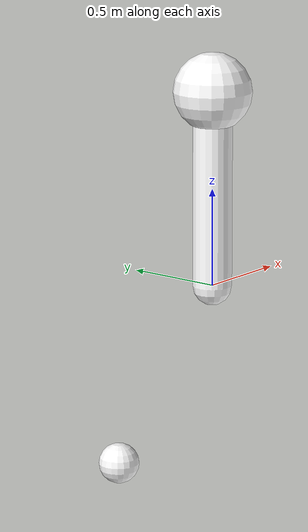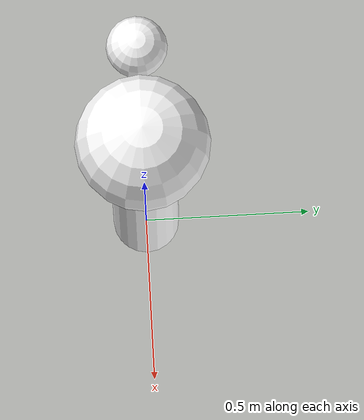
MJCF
<mujoco model="cartpole">
  <compiler coordinate="local" inertiafromgeom="true"/>
  <default>
    <joint damping="0.2"/>
    <geom contype="3" conaffinity="3" friction="0 0 0" rgba="0.7 0.7 0 1"/>
  </default>
  <option gravity="1e-5 0 -9.81" integrator="Euler" timestep="0.05"/>
  <size nstack="3000"/>
  <worldbody>
    <camera name="rgb" mode="fixed" pos="0 4 0.0" euler="-90 0 180"/>
    <body name="cart" pos="0 0 0">
      <joint axis="1 0 0" limited="true" margin="0.01" name="slider" pos="0 0 0" range="-100 100" type="slide"/>
      <geom pos="0 0 0" quat="0.707 0 0.707 0" rgba="1 1 1 1" size="0.01 0.01" mass="1." type="capsule" name="gcart"/>
      <body name="pole" pos="0 0 0">
        <joint axis="0 1 0" name="hinge" pos="0 0 0" type="hinge"/>
        <geom fromto="0 0 0 0 0 1.0" name="gpole" rgba="1 1 1 1" mass="1." size="0.1 0.5" type="capsule"/>
        <body name="mass" pos="0 0 1.">
            <geom size="0.2 0.2" mass="0" rgba="1 1 1 1" type="sphere" name="gmass" contype="3" conaffinity="3"/>
            <site name="tip" pos="0 0 0." size="0.01 0.01"/>
        </body>
      </body>
    </body>
    <body name="target" pos="-0.75 0 -0.75">
      <geom rgba="1 1 1 1" size="0.1 0.1" mass="1." type="sphere" name="gtarget" contype="2" conaffinity="2"/>
    </body>
  </worldbody>
  <actuator>
    <motor ctrllimited="true" ctrlrange="-1 1" gear="40" joint="slider" name="slide"/>
  </actuator>
</mujoco>
